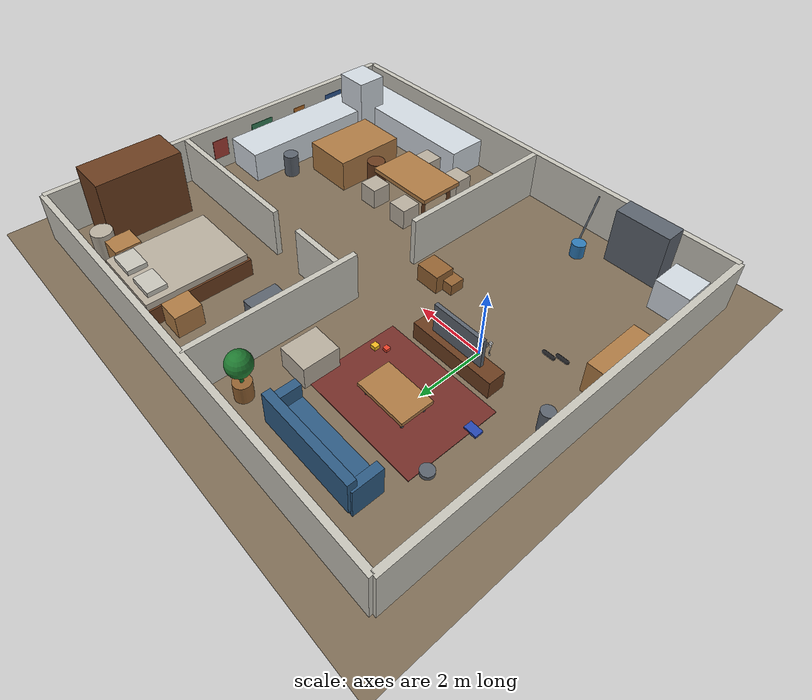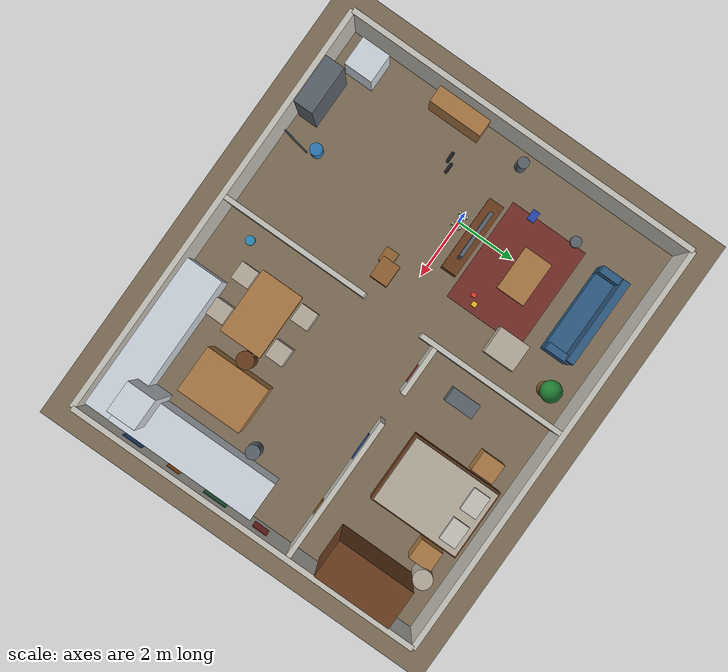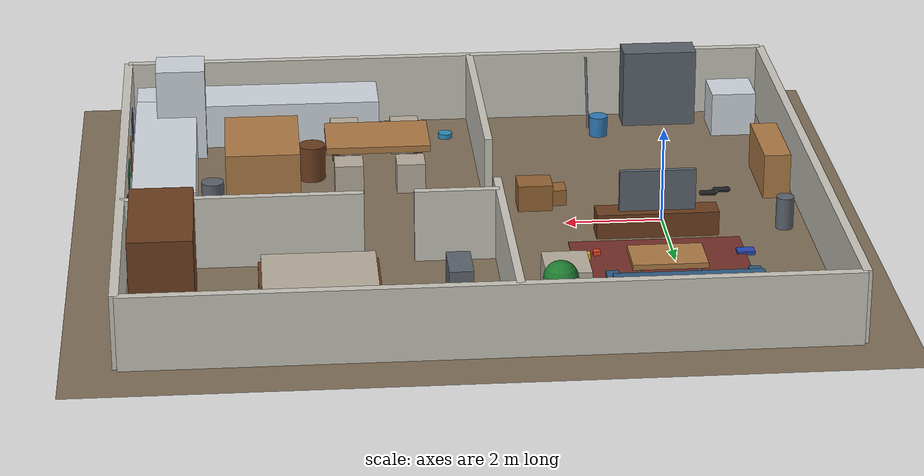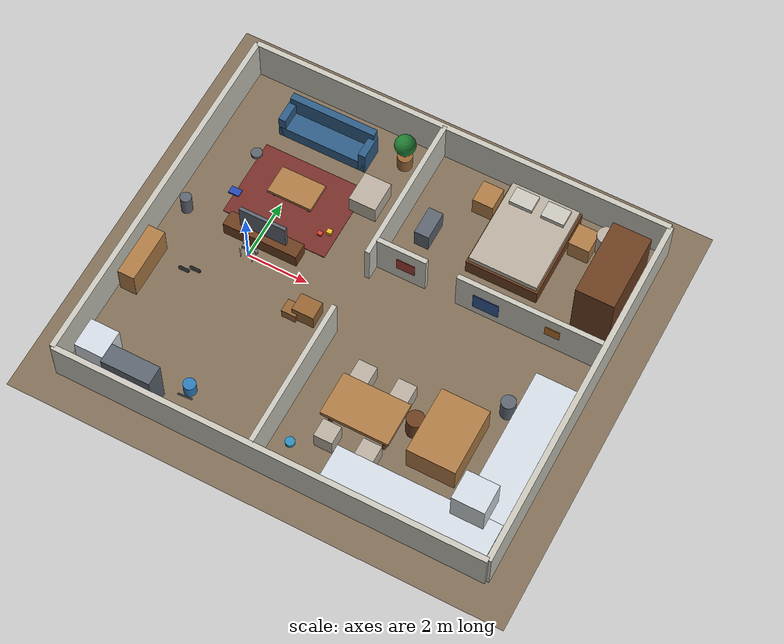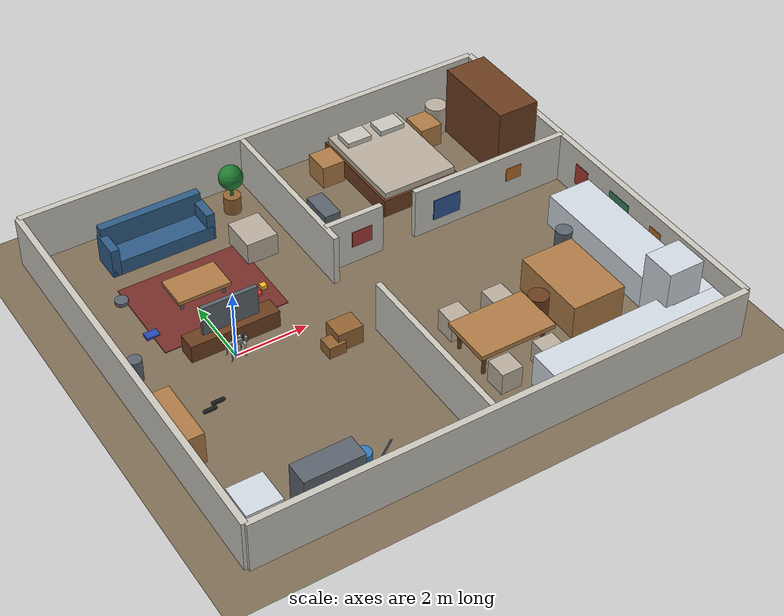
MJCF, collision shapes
<mujoco model="go2 furnished home">
  <include file="go2.xml"/>

  <statistic center="4 0 0.6" extent="8.5"/>

  <visual>
    <headlight diffuse="0.65 0.65 0.65" ambient="0.35 0.35 0.35" specular="0.15 0.15 0.15"/>
    <rgba haze="0.70 0.76 0.82 1"/>
    <global azimuth="-125" elevation="-28" offwidth="1280" offheight="900"/>
  </visual>

  <asset>
    <texture type="skybox" builtin="gradient" rgb1="0.78 0.86 0.94" rgb2="0.30 0.38 0.48" width="512" height="3072"/>
    <texture type="2d" name="home_floor_tex" builtin="flat" mark="random" random="0.12"
             rgb1="0.50 0.43 0.34" rgb2="0.50 0.43 0.34" markrgb="0.26 0.20 0.14"
             width="512" height="512"/>
    <material name="home_floor" texture="home_floor_tex" texuniform="true" texrepeat="0.10 0.10" reflectance="0"/>
    <texture type="cube" name="wall_plaster_tex" builtin="flat" mark="random" random="0.10"
             rgb1="0.78 0.77 0.73" rgb2="0.78 0.77 0.73" markrgb="0.48 0.47 0.43"
             width="512" height="3072"/>
    <material name="wall" texture="wall_plaster_tex" texuniform="false"/>
    <texture type="cube" name="surface_detail_tex" builtin="flat" mark="random" random="0.14"
             rgb1="1 1 1" rgb2="1 1 1" markrgb="0.55 0.55 0.55"
             width="128" height="768"/>
    <material name="art_blue" rgba="0.18 0.34 0.58 1"/>
    <material name="art_ochre" rgba="0.72 0.43 0.15 1"/>
    <material name="art_green" rgba="0.20 0.50 0.34 1"/>
    <material name="art_red" rgba="0.64 0.23 0.20 1"/>
    <material name="wood" texture="surface_detail_tex" rgba="0.42 0.24 0.12 1"/>
    <material name="light_wood" texture="surface_detail_tex" rgba="0.68 0.48 0.27 1"/>
    <material name="sofa" texture="surface_detail_tex" rgba="0.18 0.36 0.52 1"/>
    <material name="fabric" texture="surface_detail_tex" rgba="0.72 0.68 0.62 1"/>
    <material name="home_metal" texture="surface_detail_tex" rgba="0.36 0.39 0.43 1"/>
    <material name="appliance" texture="surface_detail_tex" rgba="0.82 0.85 0.88 1"/>
    <material name="plant" rgba="0.12 0.48 0.19 1"/>
    <material name="cardboard" texture="surface_detail_tex" rgba="0.58 0.39 0.20 1"/>
    <material name="rug" rgba="0.46 0.18 0.16 1"/>
  </asset>

  <worldbody>
    <light pos="3 -1 6" dir="0 0 -1" directional="true" diffuse="0.85 0.82 0.76"/>
    <light pos="8 3 4" dir="0 0 -1" directional="true" diffuse="0.55 0.60 0.68"/>

    <!-- 14 m x 12 m floor and outer walls. All collision geometry is group 1
         so the local elevation mapper sees imported household geometry. -->
    <geom name="floor" type="plane" group="1" size="0 0 0.05"
          material="home_floor" friction="1.0 0.01 0.001"/>
    <geom name="wall_west" type="box" group="1" pos="-3 0 0.75" size="0.09 6.0 0.75" material="wall"/>
    <geom name="wall_east" type="box" group="1" pos="11 0 0.75" size="0.09 6.0 0.75" material="wall"/>
    <geom name="wall_south" type="box" group="1" pos="4 -6 0.75" size="7.0 0.09 0.75" material="wall"/>
    <geom name="wall_north" type="box" group="1" pos="4 6 0.75" size="7.0 0.09 0.75" material="wall"/>

    <!-- Main partition with a 2 m doorway centered on y=0. -->
    <geom name="partition_left_south" type="box" group="1" pos="3.5 -3.5 0.75" size="0.08 2.5 0.75" material="wall"/>
    <geom name="partition_left_north" type="box" group="1" pos="3.5 3.5 0.75" size="0.08 2.5 0.75" material="wall"/>
    <!-- Bedroom partition with a 1.2 m door opening. -->
    <geom name="partition_bed_west" type="box" group="1" pos="4.35 1.55 0.75" size="0.85 0.08 0.75" material="wall"/>
    <geom name="partition_bed_east" type="box" group="1" pos="8.60 1.55 0.75" size="2.40 0.08 0.75" material="wall"/>

    <geom name="vslam_art_e1" type="box" group="2" pos="10.905 -4.10 0.82" size="0.012 0.34 0.26" material="art_blue" contype="0" conaffinity="0"/>
    <geom name="vslam_art_e2" type="box" group="2" pos="10.905 -2.65 0.68" size="0.012 0.22 0.38" material="art_ochre" contype="0" conaffinity="0"/>
    <geom name="vslam_art_e3" type="box" group="2" pos="10.905 -1.15 0.90" size="0.012 0.40 0.20" material="art_green" contype="0" conaffinity="0"/>
    <geom name="vslam_art_e4" type="box" group="2" pos="10.905 0.45 0.72" size="0.012 0.26 0.32" material="art_red" contype="0" conaffinity="0"/>
    <geom name="vslam_art_b1" type="box" group="2" pos="4.55 1.455 0.78" size="0.30 0.012 0.24" material="art_red" contype="0" conaffinity="0"/>
    <geom name="vslam_art_b2" type="box" group="2" pos="7.20 1.455 0.67" size="0.42 0.012 0.32" material="art_blue" contype="0" conaffinity="0"/>
    <geom name="vslam_art_b3" type="box" group="2" pos="9.35 1.455 0.88" size="0.24 0.012 0.20" material="art_ochre" contype="0" conaffinity="0"/>

    <!-- Living room: rug, sofa, armchair, coffee table and TV unit. -->
    <geom name="living_rug" type="box" group="1" pos="0.3 2.35 0.012" size="1.75 1.35 0.012" material="rug" contype="0" conaffinity="0"/>
    <geom name="sofa_base" type="box" group="1" pos="0.2 4.65 0.22" size="1.45 0.42 0.22" material="sofa"/>
    <geom name="sofa_back" type="box" group="1" pos="0.2 5.02 0.63" size="1.45 0.12 0.48" material="sofa"/>
    <geom name="sofa_arm_l" type="box" group="1" pos="-1.18 4.65 0.43" size="0.12 0.42 0.43" material="sofa"/>
    <geom name="sofa_arm_r" type="box" group="1" pos="1.58 4.65 0.43" size="0.12 0.42 0.43" material="sofa"/>
    <geom name="coffee_table_top" type="box" group="1" pos="0.25 2.55 0.34" size="0.75 0.48 0.055" material="light_wood"/>
    <geom name="coffee_leg_1" type="cylinder" group="1" pos="-0.35 2.22 0.17" size="0.045 0.17" material="home_metal"/>
    <geom name="coffee_leg_2" type="cylinder" group="1" pos="0.85 2.22 0.17" size="0.045 0.17" material="home_metal"/>
    <geom name="coffee_leg_3" type="cylinder" group="1" pos="-0.35 2.88 0.17" size="0.045 0.17" material="home_metal"/>
    <geom name="coffee_leg_4" type="cylinder" group="1" pos="0.85 2.88 0.17" size="0.045 0.17" material="home_metal"/>
    <geom name="armchair" type="box" group="1" pos="2.35 3.35 0.33" size="0.45 0.52 0.33" material="fabric"/>
    <geom name="tv_console" type="box" group="1" pos="0.2 0.60 0.26" size="1.25 0.26 0.26" material="wood"/>
    <geom name="television" type="box" group="1" pos="0.2 0.62 0.93" size="0.78 0.055 0.46" material="home_metal"/>

    <!-- Small daily objects in the living room. -->
    <geom name="book_on_floor" type="box" group="1" pos="-1.45 1.75 0.035" size="0.18 0.12 0.035" rgba="0.15 0.28 0.70 1"/>
    <geom name="toy_block_1" type="box" group="1" pos="1.55 1.65 0.055" size="0.07 0.07 0.055" rgba="0.90 0.25 0.16 1"/>
    <geom name="toy_block_2" type="box" group="1" pos="1.78 1.82 0.07" size="0.08 0.08 0.07" rgba="0.95 0.72 0.12 1"/>
    <geom name="robot_vacuum" type="cylinder" group="1" pos="-1.55 3.25 0.055" size="0.18 0.055" material="home_metal"/>
    <geom name="plant_pot" type="cylinder" group="1" pos="2.65 5.05 0.26" size="0.24 0.26" material="cardboard"/>
    <geom name="plant_stem" type="cylinder" group="1" pos="2.65 5.05 0.75" size="0.045 0.49" material="plant" contype="0" conaffinity="0"/>
    <geom name="plant_crown" type="sphere" group="1" pos="2.65 5.05 1.12" size="0.34" material="plant" contype="0" conaffinity="0"/>

    <!-- Entry / central hallway objects. -->
    <geom name="shoe_cabinet" type="box" group="1" pos="-2.55 -1.85 0.48" size="0.28 0.90 0.48" material="light_wood"/>
    <geom name="shoe_left" type="capsule" group="1" pos="-1.45 -1.35 0.055" size="0.055 0.14" quat="0.7071 0 0.7071 0" rgba="0.12 0.12 0.13 1"/>
    <geom name="shoe_right" type="capsule" group="1" pos="-1.15 -1.20 0.055" size="0.055 0.14" quat="0.7071 0 0.7071 0" rgba="0.12 0.12 0.13 1"/>
    <geom name="parcel_large" type="box" group="1" pos="2.55 -0.95 0.28" size="0.36 0.30 0.28" material="cardboard"/>
    <geom name="parcel_small" type="box" group="1" pos="2.12 -1.12 0.17" size="0.24 0.22 0.17" material="cardboard"/>
    <geom name="umbrella_stand" type="cylinder" group="1" pos="-2.45 0.55 0.34" size="0.18 0.34" material="home_metal"/>

    <!-- Dining area. -->
    <geom name="dining_table_top" type="box" group="1" pos="5.70 -3.20 0.72" size="1.10 0.72 0.07" material="light_wood"/>
    <geom name="dining_leg_1" type="cylinder" group="1" pos="4.82 -3.72 0.35" size="0.055 0.35" material="wood"/>
    <geom name="dining_leg_2" type="cylinder" group="1" pos="6.58 -3.72 0.35" size="0.055 0.35" material="wood"/>
    <geom name="dining_leg_3" type="cylinder" group="1" pos="4.82 -2.68 0.35" size="0.055 0.35" material="wood"/>
    <geom name="dining_leg_4" type="cylinder" group="1" pos="6.58 -2.68 0.35" size="0.055 0.35" material="wood"/>
    <geom name="chair_south_1" type="box" group="1" pos="5.05 -4.28 0.32" size="0.30 0.30 0.32" material="fabric"/>
    <geom name="chair_south_2" type="box" group="1" pos="6.35 -4.28 0.32" size="0.30 0.30 0.32" material="fabric"/>
    <geom name="chair_north_1" type="box" group="1" pos="5.05 -2.12 0.32" size="0.30 0.30 0.32" material="fabric"/>
    <geom name="chair_north_2" type="box" group="1" pos="6.35 -2.12 0.32" size="0.30 0.30 0.32" material="fabric"/>
    <geom name="pet_bowl" type="cylinder" group="1" pos="4.12 -4.85 0.055" size="0.15 0.055" rgba="0.18 0.55 0.72 1"/>

    <!-- Kitchen: counters, island, refrigerator, bin and stool. -->
    <geom name="kitchen_counter_east" type="box" group="1" pos="10.18 -2.50 0.48" size="0.65 2.55 0.48" material="appliance"/>
    <geom name="kitchen_counter_south" type="box" group="1" pos="8.20 -5.28 0.48" size="2.62 0.62 0.48" material="appliance"/>
    <geom name="kitchen_island" type="box" group="1" pos="8.15 -2.80 0.50" size="0.78 1.10 0.50" material="light_wood"/>
    <geom name="fridge" type="box" group="1" pos="9.85 -4.55 1.00" size="0.52 0.48 1.00" material="appliance"/>
    <geom name="trash_bin" type="cylinder" group="1" pos="9.20 -1.05 0.36" size="0.23 0.36" material="home_metal"/>
    <geom name="kitchen_stool" type="cylinder" group="1" pos="7.10 -2.80 0.38" size="0.28 0.38" material="wood"/>

    <!-- Bedroom: bed, nightstands, wardrobe, laundry basket and suitcase. -->
    <geom name="bed_base" type="box" group="1" pos="7.15 4.15 0.27" size="1.18 1.55 0.27" material="wood"/>
    <geom name="mattress" type="box" group="1" pos="7.15 4.15 0.55" size="1.12 1.48 0.18" material="fabric"/>
    <geom name="pillow_left" type="box" group="1" pos="6.62 5.18 0.78" size="0.38 0.28 0.10" material="wall" contype="0" conaffinity="0"/>
    <geom name="pillow_right" type="box" group="1" pos="7.68 5.18 0.78" size="0.38 0.28 0.10" material="wall" contype="0" conaffinity="0"/>
    <geom name="nightstand_left" type="box" group="1" pos="5.55 4.92 0.34" size="0.34 0.38 0.34" material="light_wood"/>
    <geom name="nightstand_right" type="box" group="1" pos="8.75 4.92 0.34" size="0.34 0.38 0.34" material="light_wood"/>
    <geom name="wardrobe" type="box" group="1" pos="10.15 3.70 1.05" size="0.62 1.28 1.05" material="wood"/>
    <geom name="laundry_basket" type="cylinder" group="1" pos="9.35 5.22 0.42" size="0.31 0.42" material="fabric"/>
    <geom name="suitcase" type="box" group="1" pos="4.42 3.20 0.34" size="0.24 0.48 0.34" material="home_metal"/>

    <!-- Bathroom / utility corner. -->
    <geom name="washing_machine" type="box" group="1" pos="-2.20 -4.95 0.48" size="0.48 0.48 0.48" material="appliance"/>
    <geom name="storage_shelf" type="box" group="1" pos="-0.65 -5.52 0.85" size="0.80 0.32 0.85" material="home_metal"/>
    <geom name="bucket" type="cylinder" group="1" pos="0.75 -4.75 0.22" size="0.20 0.22" rgba="0.18 0.48 0.72 1"/>
    <geom name="mop_handle" type="cylinder" group="1" pos="0.95 -5.30 0.78" size="0.025 0.78" quat="0.98 0.20 0 0" material="home_metal" contype="0" conaffinity="0"/>
  </worldbody>
</mujoco>

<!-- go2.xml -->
<mujoco model="go2_description">

  <compiler angle="radian" meshdir="assets"/>

  <statistic meansize="0.144785" extent="1.23314" center="0.025392 2.0634e-05 -0.245975"/>
  <default>
    <joint damping="0.001" armature="0.01" frictionloss="0.1"/>
    <default class="visual">
        <geom type="mesh" contype="0" conaffinity="0" group="2"/>
    </default>
  </default>

  <asset>
    <material name="metal" rgba=".9 .95 .95 1" />
    <material name="black" rgba="0 0 0 1" />
    <material name="white" rgba="1 1 1 1" />
    <material name="gray" rgba="0.671705 0.692426 0.774270 1" />

    <mesh file="base_0.obj" />
    <mesh file="base_1.obj" />
    <mesh file="base_2.obj" />
    <mesh file="base_3.obj" />
    <mesh file="base_4.obj" />
    <mesh file="hip_0.obj" />
    <mesh file="hip_1.obj" />
    <mesh file="thigh_0.obj" />
    <mesh file="thigh_1.obj" />
    <mesh file="thigh_mirror_0.obj" />
    <mesh file="thigh_mirror_1.obj" />
    <mesh file="calf_0.obj" />
    <mesh file="calf_1.obj" />
    <mesh file="calf_mirror_0.obj" />
    <mesh file="calf_mirror_1.obj" />
    <mesh file="foot.obj" />
  </asset>

  <worldbody>

    <body name="base" pos="0 0 0.445">
      <inertial pos="0.021112 0 -0.005366"
                mass="6.921"
                diaginertia="0.02448 0.098077 0.107" />
      <freejoint name="root"/>
      <geom mesh="base_0" material="black" class="visual" />
      <geom mesh="base_1" material="black" class="visual" />
      <geom mesh="base_2" material="black" class="visual" />
      <geom mesh="base_3" material="white" class="visual" />
      <geom mesh="base_4" material="gray" class="visual" />

      <geom name="base_box"      type="box"      size="0.1881 0.04675 0.057"/>
      <geom name="base_cyl1"     type="cylinder" size="0.05 0.045"   pos="0.285 0 0.01"/>
      <geom name="base_sphere1"  type="sphere"   size="0.047"        pos="0.293 0 -0.06"/>
      <site name="lidar_origin" type="cylinder" pos="0.20 0 0.12"
            size="0.045 0.025" rgba="0.04 0.04 0.05 1"/>
      <site name="imu_site" pos="0 0 0" size="0.004" rgba="0 0 0 0"/>
      <!-- Forward-facing RGB-D camera used by the ROS 2 / RTAB-Map bridge.
           MuJoCo cameras look along local -Z; these axes make +X forward and
           +Z upward in the Go2 base frame. -->
      <camera name="front_rgbd" pos="0.30 0 0.04"
              xyaxes="0 -1 0 0 0 1" fovy="70"/>

      <body name="FL_hip" pos="0.1934 0.0465 0">
        <inertial pos="-0.0054 0.00194 -0.000105" quat="0.497014 0.499245 0.505462 0.498237" mass="0.678" diaginertia="0.00088403 0.000596003 0.000479967"/>
        <joint name="FL_hip_joint" pos="0 0 0" axis="1 0 0" range="-1.0472 1.0472" actuatorfrcrange="-23.7 23.7"/>
        <geom mesh="hip_0" material="metal" class="visual" />
        <geom mesh="hip_1" material="gray" class="visual" />
        <geom size="0.046 0.02" pos="0 0.08 0" quat="0.707107 0.707107 0 0" type="cylinder" rgba="1 1 1 1"/>

        <body name="FL_thigh" pos="0 0.0955 0">
        <inertial pos="-0.00374 -0.0223 -0.0327" quat="0.829533 0.0847635 -0.0200632 0.551623" mass="1.152" diaginertia="0.00594973 0.00584149 0.000878787"/>
        <joint name="FL_thigh_joint" pos="0 0 0" axis="0 1 0" range="-1.5708 3.4907" actuatorfrcrange="-23.7 23.7"/>
        <geom mesh="thigh_0" material="metal" class="visual" />
        <geom mesh="thigh_1" material="gray" class="visual" />
        <geom size="0.055 0.01225 0.017" pos="0 0 -0.1065" quat="0.707107 0 0.707107 0" type="box" rgba="1 1 1 1"/>
        <body name="FL_calf" pos="0 0 -0.213">
        <inertial pos="0.00629595 -0.000622121 -0.141417" quat="0.710672 0.00154099 -0.00450087 0.703508" mass="0.241352" diaginertia="0.0014901 0.00146356 5.31397e-05"/>
        <joint name="FL_calf_joint" pos="0 0 0" axis="0 1 0" range="-2.7227 -0.83776" actuatorfrcrange="-35.55 35.55"/>
        <geom mesh="calf_0" material="gray" class="visual" />
        <geom mesh="calf_1" material="black" class="visual" />
        <geom size="0.012 0.06" pos="0.008 0 -0.06" quat="0.994493 0 -0.104807 0" type="cylinder" rgba="1 1 1 1"/>
        <geom size="0.011 0.0325" pos="0.02 0 -0.148" quat="0.999688 0 0.0249974 0" type="cylinder"/>
        <geom size="0.0155 0.015" pos="0.00801333 0 -0.18745" quat="0.965093 0 0.261909 0" type="cylinder"/>
        <geom pos="0 0 -0.213" mesh="foot" class="visual" material="black" />
        <geom size="0.022" pos="-0.002 0 -0.213" rgba="1 1 1 1"/>
        </body>
        </body>
      </body>
      <body name="FR_hip" pos="0.1934 -0.0465 0">
        <inertial pos="-0.0054 -0.00194 -0.000105" quat="0.498237 0.505462 0.499245 0.497014" mass="0.678" diaginertia="0.00088403 0.000596003 0.000479967"/>
        <joint name="FR_hip_joint" pos="0 0 0" axis="1 0 0" range="-1.0472 1.0472" actuatorfrcrange="-23.7 23.7"/>
        <geom mesh="hip_0" material="metal" class="visual" quat="4.63268e-05 1 0 0" />
        <geom mesh="hip_1" material="gray" class="visual" quat="4.63268e-05 1 0 0" />
        <geom size="0.046 0.02" pos="0 -0.08 0" quat="0.707107 0.707107 0 0" type="cylinder" rgba="1 1 1 1"/>
        <body name="FR_thigh" pos="0 -0.0955 0">
        <inertial pos="-0.00374 0.0223 -0.0327" quat="0.551623 -0.0200632 0.0847635 0.829533" mass="1.152" diaginertia="0.00594973 0.00584149 0.000878787"/>
        <joint name="FR_thigh_joint" pos="0 0 0" axis="0 1 0" range="-1.5708 3.4907" actuatorfrcrange="-23.7 23.7"/>
        <geom mesh="thigh_mirror_0" material="metal" class="visual" />
        <geom mesh="thigh_mirror_1" material="gray" class="visual" />
        <geom size="0.055 0.01225 0.017" pos="0 0 -0.1065" quat="0.707107 0 0.707107 0" type="box" rgba="1 1 1 1"/>
        <body name="FR_calf" pos="0 0 -0.213">
        <inertial pos="0.00629595 0.000622121 -0.141417" quat="0.703508 -0.00450087 0.00154099 0.710672" mass="0.241352" diaginertia="0.0014901 0.00146356 5.31397e-05"/>
        <joint name="FR_calf_joint" pos="0 0 0" axis="0 1 0" range="-2.7227 -0.83776" actuatorfrcrange="-35.55 35.55"/>
        <geom mesh="calf_mirror_0" material="gray" class="visual" />
        <geom mesh="calf_mirror_1" material="black" class="visual" />
        <geom size="0.013 0.06" pos="0.01 0 -0.06" quat="0.995004 0 -0.0998334 0" type="cylinder" rgba="1 1 1 1"/>
        <geom size="0.011 0.0325" pos="0.02 0 -0.148" quat="0.999688 0 0.0249974 0" type="cylinder"/>
        <geom size="0.0155 0.015" pos="0.00801333 0 -0.18745" quat="0.965093 0 0.261909 0" type="cylinder"/>
        <geom pos="0 0 -0.213" mesh="foot" class="visual" material="black" />
        <geom size="0.022" pos="-0.002 0 -0.213" rgba="1 1 1 1"/>
        </body>
        </body>
      </body>
      <body name="RL_hip" pos="-0.1934 0.0465 0">
        <inertial pos="0.0054 0.00194 -0.000105" quat="0.505462 0.498237 0.497014 0.499245" mass="0.678" diaginertia="0.00088403 0.000596003 0.000479967"/>
        <joint name="RL_hip_joint" pos="0 0 0" axis="1 0 0" range="-1.0472 1.0472" actuatorfrcrange="-23.7 23.7"/>
        <geom mesh="hip_0" material="metal" class="visual" quat="4.63268e-05 0 1 0" />
        <geom mesh="hip_1" material="gray" class="visual" quat="4.63268e-05 0 1 0" />
        <geom size="0.046 0.02" pos="0 0.08 0" quat="0.707107 0.707107 0 0" type="cylinder" rgba="1 1 1 1"/>
        <body name="RL_thigh" pos="0 0.0955 0">
        <inertial pos="-0.00374 -0.0223 -0.0327" quat="0.829533 0.0847635 -0.0200632 0.551623" mass="1.152" diaginertia="0.00594973 0.00584149 0.000878787"/>
        <joint name="RL_thigh_joint" pos="0 0 0" axis="0 1 0" range="-0.5236 4.5379" actuatorfrcrange="-23.7 23.7"/>
        <geom mesh="thigh_0" material="metal" class="visual" />
        <geom mesh="thigh_1" material="gray" class="visual" />
        <geom size="0.055 0.01225 0.017" pos="0 0 -0.1065" quat="0.707107 0 0.707107 0" type="box" rgba="1 1 1 1"/>
        <body name="RL_calf" pos="0 0 -0.213">
        <inertial pos="0.00629595 -0.000622121 -0.141417" quat="0.710672 0.00154099 -0.00450087 0.703508" mass="0.241352" diaginertia="0.0014901 0.00146356 5.31397e-05"/>
        <joint name="RL_calf_joint" pos="0 0 0" axis="0 1 0" range="-2.7227 -0.83776" actuatorfrcrange="-35.55 35.55"/>
        <geom mesh="calf_0" material="gray" class="visual" />
        <geom mesh="calf_1" material="black" class="visual" />
        <geom size="0.013 0.06" pos="0.01 0 -0.06" quat="0.995004 0 -0.0998334 0" type="cylinder" rgba="1 1 1 1"/>
        <geom size="0.011 0.0325" pos="0.02 0 -0.148" quat="0.999688 0 0.0249974 0" type="cylinder"/>
        <geom size="0.0155 0.015" pos="0.00801333 0 -0.18745" quat="0.965093 0 0.261909 0" type="cylinder"/>
        <geom pos="0 0 -0.213" mesh="foot" class="visual" material="black" />
        <geom size="0.022" pos="-0.002 0 -0.213" rgba="1 1 1 1"/>
        </body>
        </body>
      </body>

      <body name="RR_hip" pos="-0.1934 -0.0465 0">
        <inertial pos="0.0054 -0.00194 -0.000105" quat="0.499245 0.497014 0.498237 0.505462" mass="0.678" diaginertia="0.00088403 0.000596003 0.000479967"/>
        <joint name="RR_hip_joint" pos="0 0 0" axis="1 0 0" range="-1.0472 1.0472" actuatorfrcrange="-23.7 23.7"/>
        <geom mesh="hip_0" material="metal" class="visual"
          quat="2.14617e-09 4.63268e-05 4.63268e-05 -1" />
        <geom mesh="hip_1" material="gray" class="visual"
          quat="2.14617e-09 4.63268e-05 4.63268e-05 -1" />
        <geom size="0.046 0.02" pos="0 -0.08 0" quat="0.707107 0.707107 0 0" type="cylinder" rgba="1 1 1 1"/>
        <body name="RR_thigh" pos="0 -0.0955 0">
        <inertial pos="-0.00374 0.0223 -0.0327" quat="0.551623 -0.0200632 0.0847635 0.829533" mass="1.152" diaginertia="0.00594973 0.00584149 0.000878787"/>
        <joint name="RR_thigh_joint" pos="0 0 0" axis="0 1 0" range="-0.5236 4.5379" actuatorfrcrange="-23.7 23.7"/>
        <geom mesh="thigh_mirror_0" material="metal" class="visual" />
        <geom mesh="thigh_mirror_1" material="gray" class="visual" />
        <geom size="0.055 0.01225 0.017" pos="0 0 -0.1065" quat="0.707107 0 0.707107 0" type="box" rgba="1 1 1 1"/>
        <body name="RR_calf" pos="0 0 -0.213">
        <inertial pos="0.00629595 0.000622121 -0.141417" quat="0.703508 -0.00450087 0.00154099 0.710672" mass="0.241352" diaginertia="0.0014901 0.00146356 5.31397e-05"/>
        <joint name="RR_calf_joint" pos="0 0 0" axis="0 1 0" range="-2.7227 -0.83776" actuatorfrcrange="-35.55 35.55"/>
        <geom mesh="calf_mirror_0" material="gray" class="visual" />
        <geom mesh="calf_mirror_1" material="black" class="visual" />
        <geom size="0.013 0.06" pos="0.01 0 -0.06" quat="0.995004 0 -0.0998334 0" type="cylinder" rgba="1 1 1 1"/>
        <geom size="0.011 0.0325" pos="0.02 0 -0.148" quat="0.999688 0 0.0249974 0" type="cylinder"/>
        <geom size="0.0155 0.015" pos="0.00801333 0 -0.18745" quat="0.965093 0 0.261909 0" type="cylinder"/>
        <geom pos="0 0 -0.213" mesh="foot" class="visual" material="black" />
        <geom size="0.022" pos="-0.002 0 -0.213" rgba="1 1 1 1"/>
        </body>
        </body>
      </body>

    </body>
  </worldbody>

  <actuator>
    <motor name="FL_hip"   joint="FL_hip_joint"/>
    <motor name="FL_thigh" joint="FL_thigh_joint"/>
    <motor name="FL_calf"  joint="FL_calf_joint"/>
    <motor name="FR_hip"   joint="FR_hip_joint"/>
    <motor name="FR_thigh" joint="FR_thigh_joint"/>
    <motor name="FR_calf"  joint="FR_calf_joint"/>
    <motor name="RL_hip"   joint="RL_hip_joint"/>
    <motor name="RL_thigh" joint="RL_thigh_joint"/>
    <motor name="RL_calf"  joint="RL_calf_joint"/>
    <motor name="RR_hip"   joint="RR_hip_joint"/>
    <motor name="RR_thigh" joint="RR_thigh_joint"/>
    <motor name="RR_calf"  joint="RR_calf_joint"/>
  </actuator>

  <sensor>
    <!-- Raw body-frame measurements only. The ROS bridge integrates the gyro;
         no simulator world pose is exposed to the VSLAM stack. -->
    <gyro name="imu_gyro" site="imu_site" noise="0.001"/>
    <accelerometer name="imu_accel" site="imu_site" noise="0.01"/>
  </sensor>

</mujoco>
